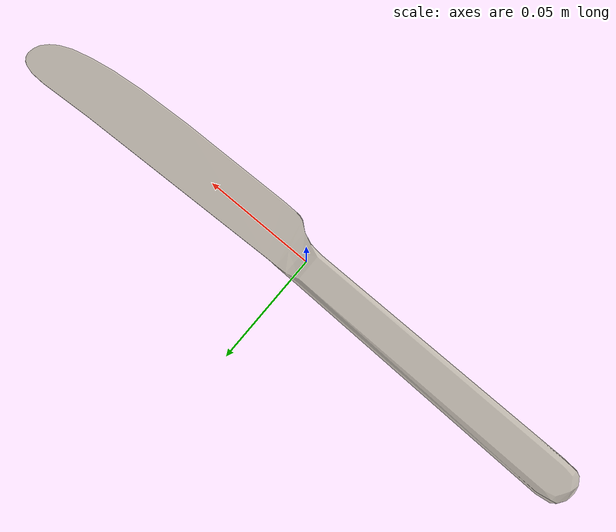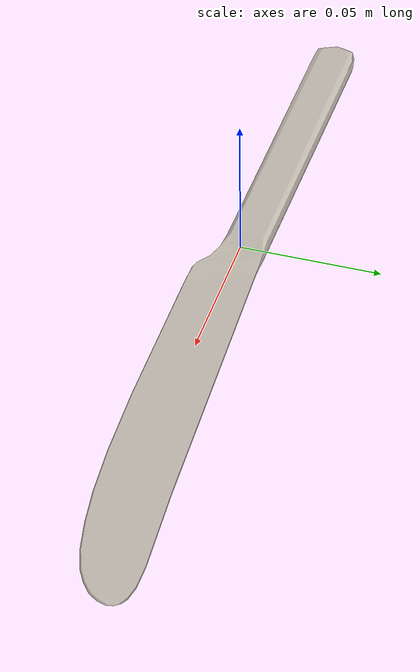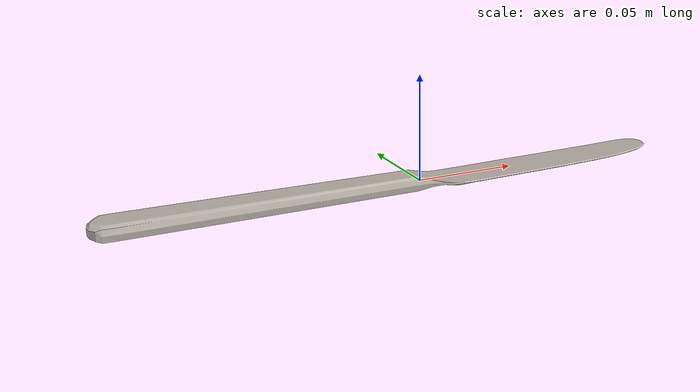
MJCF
<?xml version="1.0" ?>
<mujoco model="table_knife">
	<compiler meshdir="table_knife/meshes" texturedir="table_knife/textures" angle="radian" autolimits="true" balanceinertia="true" boundmass="0.000001" boundinertia="0.000001"/>
	<default>
		<default class="visual">
			<geom contype="0" conaffinity="0"/>
		</default>
		<default class="collision">
			<geom rgba="1.0 0.0 0.0 0.0"/>
		</default>
	</default>
	<asset>
		<mesh name="TableKnife" file="obj/TableKnife.obj" scale="1.0 1.0 1.0"/>
		<mesh name="TableKnife_001" file="stl/TableKnife_001.stl" scale="1.0 1.0 1.0"/>
		<material name="M_TableKnife" texture="T_TableKnife"/>
		<texture name="T_TableKnife" type="2d" file="T_TableKnife.png"/>
	</asset>
	<worldbody>
		<body name="table_knife" pos="0.0 0.0 0.0" quat="1.0 0.0 0.0 0.0">
			<inertial mass="0.14500227570533752" pos="-0.05178093910217285 0.00212700548581779 3.767759153561201e-06" quat="0.9999305009841919 0.0005745996022596955 1.0600762834656052e-05 -0.011776793748140335" diaginertia="4.212003659631591e-06 0.0009561760234646499 0.0009594511357136071"/>
			<geom name="TableKnife" type="mesh" pos="0.0 0.0 0.0" quat="1.0 0.0 0.0 0.0" mesh="TableKnife" material="M_TableKnife" class="visual"/>
			<geom name="TableKnife_001" type="mesh" pos="0.0 0.0 0.0" quat="1.0 0.0 0.0 0.0" mesh="TableKnife_001" class="collision"/>
		</body>
	</worldbody>
	<equality/>
</mujoco>
